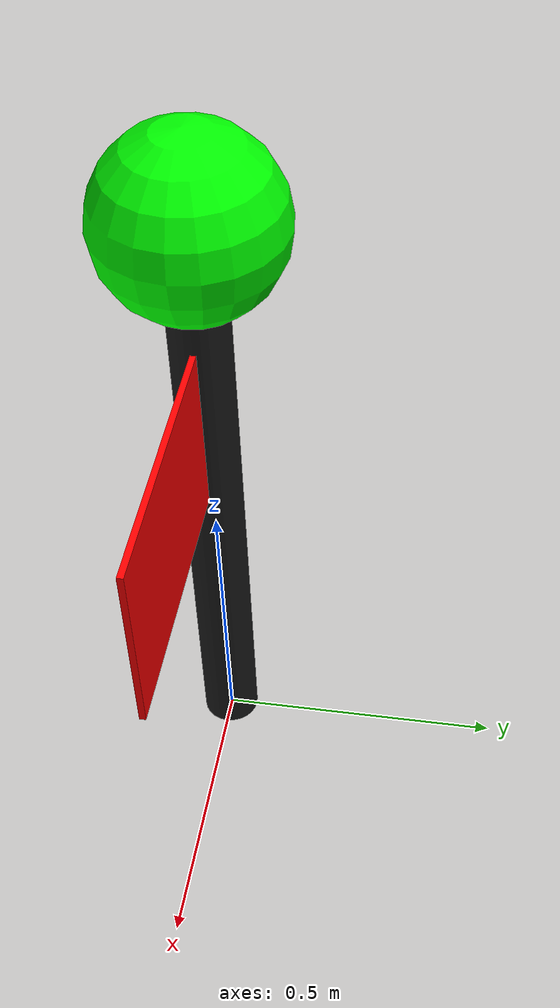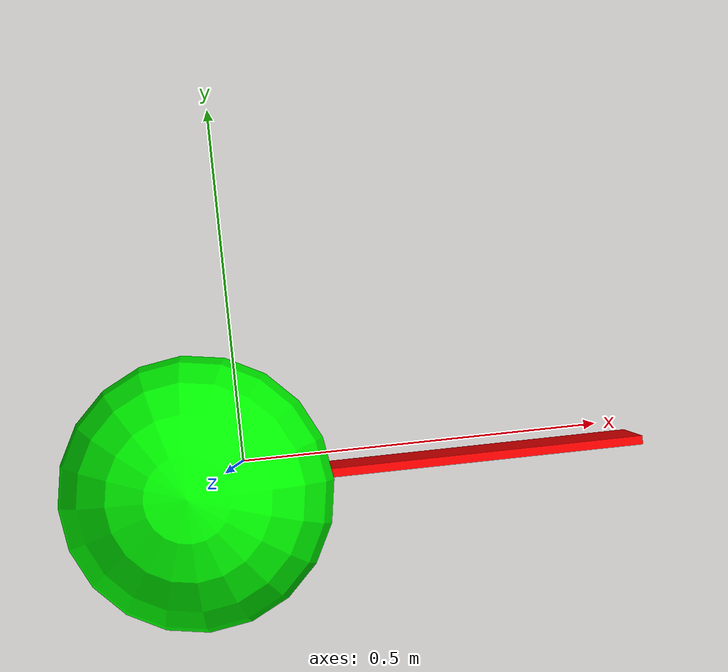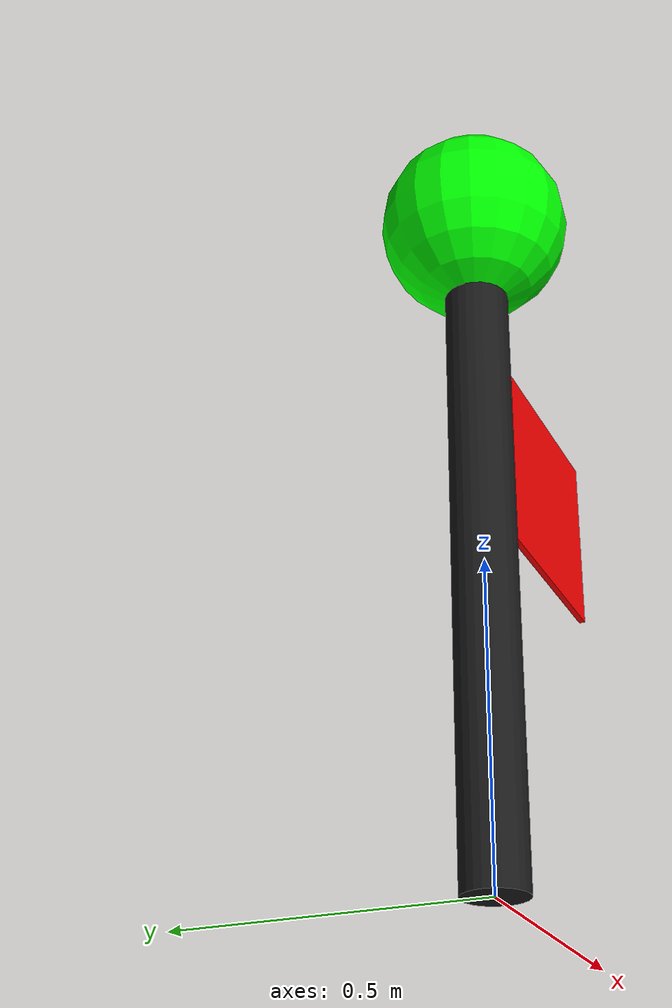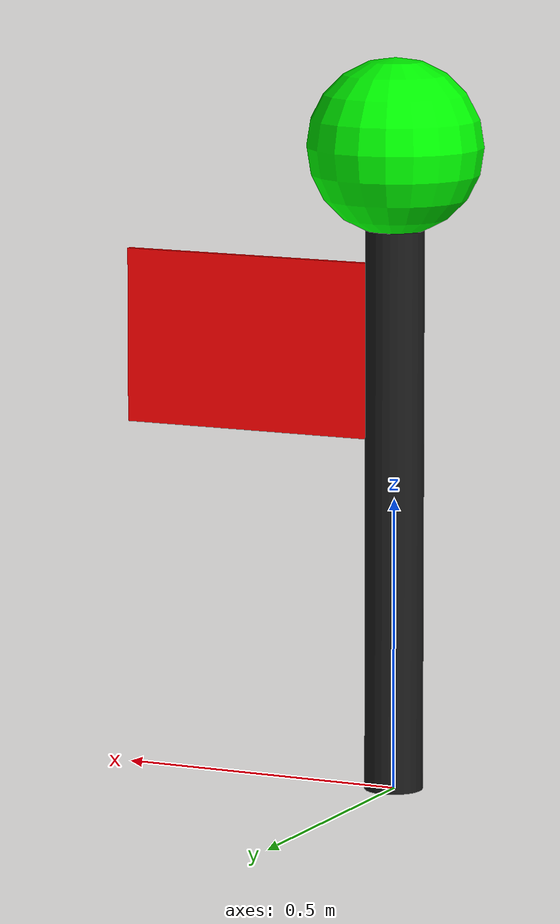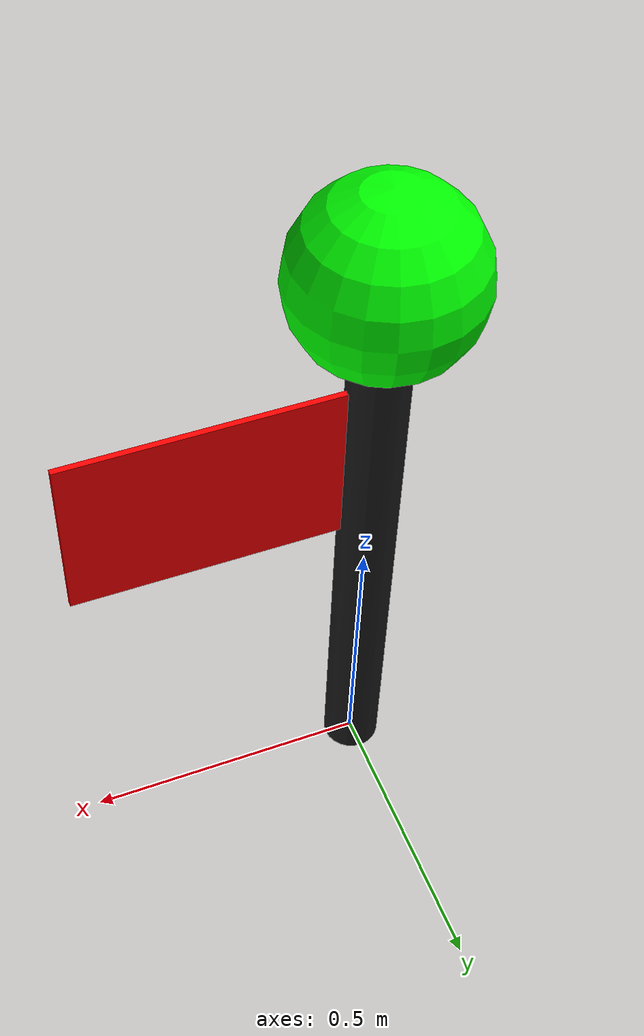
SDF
<?xml version="1.0" ?>
<sdf version="1.6">
  <model name="waypoint_flag">
    <static>true</static>
    <link name="link">
      <gravity>0</gravity>
      <visual name="pole">
        <pose>0 0 0.5 0 0 0</pose>
        <geometry>
          <cylinder>
            <radius>0.05</radius>
            <length>1.0</length>
          </cylinder>
        </geometry>
        <material>
          <ambient>0.1 0.1 0.1 1</ambient>
          <diffuse>0.1 0.1 0.1 1</diffuse>
          <specular>0 0 0 0</specular>
          <emissive>0 0 0 1</emissive>
        </material>
      </visual>
      <visual name="flag">
        <pose>0.25 0 0.75 0 0 0</pose>
        <geometry>
          <box>
            <size>0.5 0.01 0.3</size>
          </box>
        </geometry>
        <material>
          <ambient>1.0 0.0 0.0 1</ambient>
          <diffuse>1.0 0.0 0.0 1</diffuse>
          <specular>0.1 0.1 0.1 1</specular>
          <emissive>0.1 0 0 1</emissive>
        </material>
      </visual>
      <visual name="marker">
        <pose>0 0 1.1 0 0 0</pose>
        <geometry>
          <sphere>
            <radius>0.15</radius>
          </sphere>
        </geometry>
        <material>
          <ambient>0.0 1.0 0.0 1</ambient>
          <diffuse>0.0 1.0 0.0 1</diffuse>
          <specular>0.1 0.1 0.1 1</specular>
          <emissive>0 0.1 0 1</emissive>
        </material>
      </visual>
      <collision name="collision">
        <pose>0 0 0.5 0 0 0</pose>
        <geometry>
          <cylinder>
            <radius>0.05</radius>
            <length>1.0</length>
          </cylinder>
        </geometry>
      </collision>
    </link>
  </model>
</sdf>
